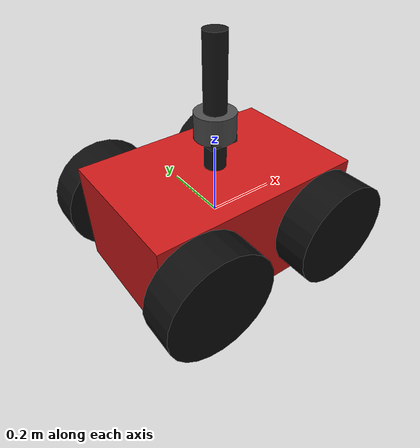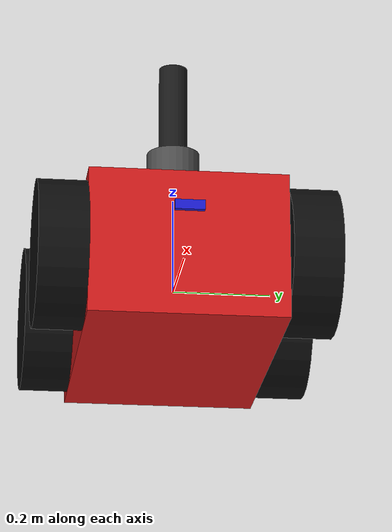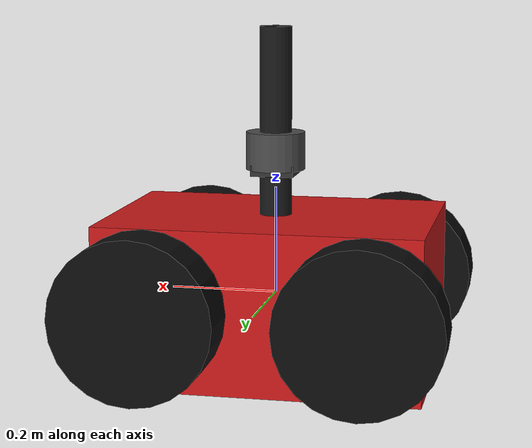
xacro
<?xml version="1.0"?>
<robot xmlns:xacro="http://www.ros.org/wiki/xacro" name="robot">

  <xacro:arg name="wheel_joint_type" default="fixed"/>
  <xacro:arg name="use_diff_drive" default="false"/>

  <xacro:property name="wheel_joint_type" value="$(arg wheel_joint_type)"/>
  <xacro:property name="use_diff_drive" value="$(arg use_diff_drive)"/>
  <xacro:property name="chassis_length" value="0.6"/>

  <xacro:include filename="chassis.xacro"/>
  <xacro:include filename="imu.xacro"/>
  <xacro:include filename="lidar.xacro"/>
  <xacro:include filename="camera.xacro"/>
  <xacro:include filename="gazebo_plugins.xacro"/>

</robot>

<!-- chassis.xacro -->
<robot xmlns:xacro="http://www.ros.org/wiki/xacro">

  <xacro:property name="base_mass" value="30.0"/>
  <xacro:property name="wheel_mass" value="2.0"/>
  <xacro:property name="wheel_radius" value="0.15"/>
  <xacro:property name="wheel_width" value="0.1"/>
  <xacro:property name="chassis_length" value="0.6"/>
  <xacro:property name="chassis_width" value="0.4"/>
  <xacro:property name="chassis_height" value="0.3"/>
  <xacro:property name="track_width" value="0.5"/>
  <xacro:property name="wheelbase" value="0.4"/>

  <xacro:macro name="wheel_inertia" params="mass radius">
    <inertial>
      <mass value="${mass}"/>
      <inertia ixx="${0.5 * mass * radius * radius}" ixy="0" ixz="0"
               iyy="${0.5 * mass * radius * radius}" iyz="0"
               izz="${mass * radius * radius}"/>
    </inertial>
  </xacro:macro>

  <link name="base_link">
    <visual>
      <geometry>
        <box size="${chassis_length} ${chassis_width} ${chassis_height}"/>
      </geometry>
      <material name="red">
        <color rgba="0.8 0.1 0.1 1.0"/>
      </material>
    </visual>
    <collision>
      <geometry>
        <box size="${chassis_length} ${chassis_width} ${chassis_height}"/>
      </geometry>
    </collision>
    <inertial>
      <mass value="${base_mass}"/>
      <inertia ixx="0.8" ixy="0" ixz="0" iyy="1.2" iyz="0" izz="1.5"/>
    </inertial>
  </link>

  <link name="lidar_mast_link">
    <visual>
      <geometry>
        <cylinder radius="0.03" length="0.35"/>
      </geometry>
      <material name="black">
        <color rgba="0.1 0.1 0.1 1.0"/>
      </material>
    </visual>
    <collision>
      <geometry>
        <cylinder radius="0.03" length="0.35"/>
      </geometry>
    </collision>
    <inertial>
      <mass value="0.5"/>
      <inertia ixx="0.01" ixy="0" ixz="0" iyy="0.01" iyz="0" izz="0.01"/>
    </inertial>
  </link>

  <joint name="lidar_mast_joint" type="fixed">
    <parent link="base_link"/>
    <child link="lidar_mast_link"/>
    <origin xyz="0 0 ${chassis_height * 0.5 + 0.175}" rpy="0 0 0"/>
  </joint>

  <xacro:macro name="wheel" params="prefix x y mimic_joint:='none'">
    <link name="${prefix}_wheel_link">
      <visual>
        <origin xyz="0 0 0" rpy="1.5708 0 0"/>
        <geometry>
          <cylinder radius="${wheel_radius}" length="${wheel_width}"/>
        </geometry>
        <material name="wheel_black">
          <color rgba="0.05 0.05 0.05 1.0"/>
        </material>
      </visual>
      <collision>
        <origin xyz="0 0 0" rpy="1.5708 0 0"/>
        <geometry>
          <cylinder radius="${wheel_radius}" length="${wheel_width}"/>
        </geometry>
      </collision>
      <xacro:wheel_inertia mass="${wheel_mass}" radius="${wheel_radius}"/>
    </link>

    <joint name="${prefix}_wheel_joint" type="${wheel_joint_type}">
      <parent link="base_link"/>
      <child link="${prefix}_wheel_link"/>
      <origin xyz="${x} ${y} ${-(chassis_height * 0.5 - wheel_radius)}" rpy="0 0 0"/>
      <axis xyz="0 1 0"/>
      <xacro:unless value="${mimic_joint == 'none'}">
        <mimic joint="${mimic_joint}" multiplier="1.0" offset="0.0"/>
      </xacro:unless>
    </joint>
  </xacro:macro>

  <gazebo reference="lidar_mast_link">
    <material>
      <ambient>0.1 0.1 0.1 1</ambient>
      <diffuse>0.1 0.1 0.1 1</diffuse>
    </material>
  </gazebo>

  <xacro:wheel prefix="left_front" x="${wheelbase * 0.5}" y="${-track_width * 0.5}"/>
  <xacro:wheel prefix="right_front" x="${wheelbase * 0.5}" y="${track_width * 0.5}"/>
  <xacro:wheel prefix="left_rear" x="${-wheelbase * 0.5}" y="${-track_width * 0.5}"
               mimic_joint="left_front_wheel_joint"/>
  <xacro:wheel prefix="right_rear" x="${-wheelbase * 0.5}" y="${track_width * 0.5}"
               mimic_joint="right_front_wheel_joint"/>

  <gazebo reference="base_link">
    <material>
      <ambient>0.8 0.1 0.1 1</ambient>
      <diffuse>0.8 0.1 0.1 1</diffuse>
    </material>
  </gazebo>

  <xacro:macro name="wheel_gazebo" params="prefix">
    <gazebo reference="${prefix}_wheel_link">
      <mu1>1.0</mu1>
      <mu2>1.0</mu2>
      <material>
        <ambient>0.05 0.05 0.05 1</ambient>
        <diffuse>0.05 0.05 0.05 1</diffuse>
      </material>
    </gazebo>
  </xacro:macro>

  <xacro:wheel_gazebo prefix="left_front"/>
  <xacro:wheel_gazebo prefix="right_front"/>
  <xacro:wheel_gazebo prefix="left_rear"/>
  <xacro:wheel_gazebo prefix="right_rear"/>

</robot>

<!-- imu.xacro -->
<robot xmlns:xacro="http://www.ros.org/wiki/xacro">

  <link name="imu_link">
    <collision>
      <geometry>
        <box size="0.001 0.001 0.001"/>
      </geometry>
    </collision>
    <inertial>
      <mass value="0.01"/>
      <inertia ixx="1e-6" ixy="0" ixz="0" iyy="1e-6" iyz="0" izz="1e-6"/>
    </inertial>
  </link>

  <joint name="imu_joint" type="fixed">
    <parent link="base_link"/>
    <child link="imu_link"/>
    <origin xyz="0 0 0" rpy="0 0 0"/>
  </joint>

  <gazebo reference="base_link">
    <gravity>true</gravity>
    <sensor name="imu_sensor" type="imu">
      <always_on>true</always_on>
      <update_rate>100</update_rate>
      <visualize>true</visualize>
      <topic>/imu/data</topic>
      <gz_frame_id>imu_link</gz_frame_id>
      <enable_metrics>true</enable_metrics>
      <imu>
      </imu>
    </sensor>
  </gazebo>

</robot>

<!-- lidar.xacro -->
<robot xmlns:xacro="http://www.ros.org/wiki/xacro">

  <link name="lidar_link">
    <visual>
      <geometry>
        <box size="0.08 0.08 0.02"/>
      </geometry>
      <origin xyz="0 0 0.045" rpy="0 0 0"/>
      <material name="lidar_mount_gray">
        <color rgba="0.2 0.2 0.2 1.0"/>
      </material>
    </visual>
    <visual>
      <geometry>
        <cylinder radius="0.055" length="0.07"/>
      </geometry>
      <origin xyz="0 0 0.08" rpy="0 0 0"/>
      <material name="lidar_gray">
        <color rgba="0.3 0.3 0.3 1.0"/>
      </material>
    </visual>
    <collision>
      <geometry>
        <cylinder radius="0.055" length="0.07"/>
      </geometry>
      <origin xyz="0 0 0.08" rpy="0 0 0"/>
    </collision>
    <inertial>
      <mass value="0.3"/>
      <origin xyz="0 0 0.04" rpy="0 0 0"/>
      <inertia ixx="0.001" ixy="0" ixz="0" iyy="0.001" iyz="0" izz="0.001"/>
    </inertial>
  </link>

  <joint name="lidar_joint" type="fixed">
    <parent link="base_link"/>
    <child link="lidar_link"/>
    <origin xyz="0 0 ${chassis_height * 0.5 + 0.04}" rpy="0 0 0"/>
  </joint>

  <gazebo reference="lidar_link">
    <material>
      <ambient>0.3 0.3 0.3 1</ambient>
      <diffuse>0.3 0.3 0.3 1</diffuse>
    </material>
    <sensor name="lidar" type="gpu_lidar">
      <always_on>true</always_on>
      <update_rate>10</update_rate>
      <visualize>true</visualize>
      <topic>/lidar/scan</topic>
      <gz_frame_id>lidar_link</gz_frame_id>
      <pose>0 0 0.08 0 0 0</pose>
      <ray>
        <scan>
          <horizontal>
            <samples>720</samples>
            <resolution>1</resolution>
            <min_angle>-3.14159</min_angle>
            <max_angle>3.14159</max_angle>
          </horizontal>
          <vertical>
            <samples>16</samples>
            <resolution>1</resolution>
            <min_angle>-0.261799</min_angle>
            <max_angle>0.261799</max_angle>
          </vertical>
        </scan>
        <range>
          <min>0.1</min>
          <max>50.0</max>
          <resolution>0.01</resolution>
        </range>
      </ray>
    </sensor>
  </gazebo>

</robot>

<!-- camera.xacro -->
<robot xmlns:xacro="http://www.ros.org/wiki/xacro">

  <link name="camera_link">
    <visual>
      <geometry>
        <box size="0.02 0.06 0.02"/>
      </geometry>
      <material name="camera_blue">
        <color rgba="0.1 0.1 0.8 1.0"/>
      </material>
    </visual>
    <collision>
      <geometry>
        <box size="0.02 0.06 0.02"/>
      </geometry>
    </collision>
    <inertial>
      <mass value="0.05"/>
      <inertia ixx="1e-5" ixy="0" ixz="0" iyy="1e-5" iyz="0" izz="1e-5"/>
    </inertial>
  </link>

  <joint name="camera_joint" type="fixed">
    <parent link="base_link"/>
    <child link="camera_link"/>
    <origin xyz="${chassis_length * 0.5} 0 ${chassis_height * 0.25}" rpy="0 0 0"/>
  </joint>

  <gazebo reference="camera_link">
    <sensor name="rgb_camera" type="camera">
      <always_on>true</always_on>
      <update_rate>15</update_rate>
      <visualize>true</visualize>
      <topic>/camera/color/image_raw</topic>
      <gz_frame_id>camera_link</gz_frame_id>
      <camera>
        <horizontal_fov>1.047</horizontal_fov>
        <image>
          <width>640</width>
          <height>480</height>
          <format>R8G8B8</format>
        </image>
        <clip>
          <near>0.1</near>
          <far>100.0</far>
        </clip>
      </camera>
    </sensor>

    <sensor name="depth_camera" type="depth_camera">
      <always_on>true</always_on>
      <update_rate>15</update_rate>
      <visualize>false</visualize>
      <topic>/camera/depth/image_raw</topic>
      <gz_frame_id>camera_link</gz_frame_id>
      <camera>
        <horizontal_fov>1.047</horizontal_fov>
        <image>
          <width>640</width>
          <height>480</height>
        </image>
        <clip>
          <near>0.1</near>
          <far>10.0</far>
        </clip>
      </camera>
    </sensor>
  </gazebo>

</robot>
